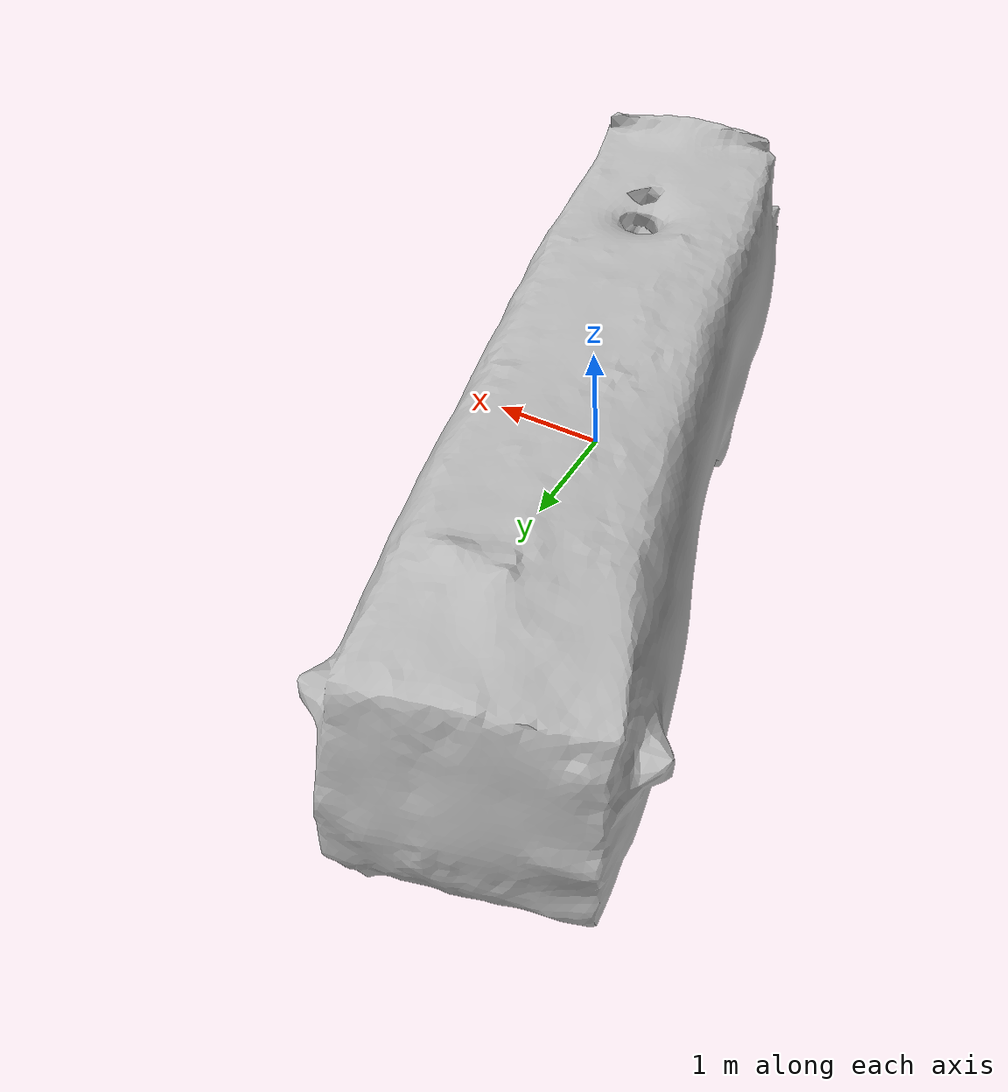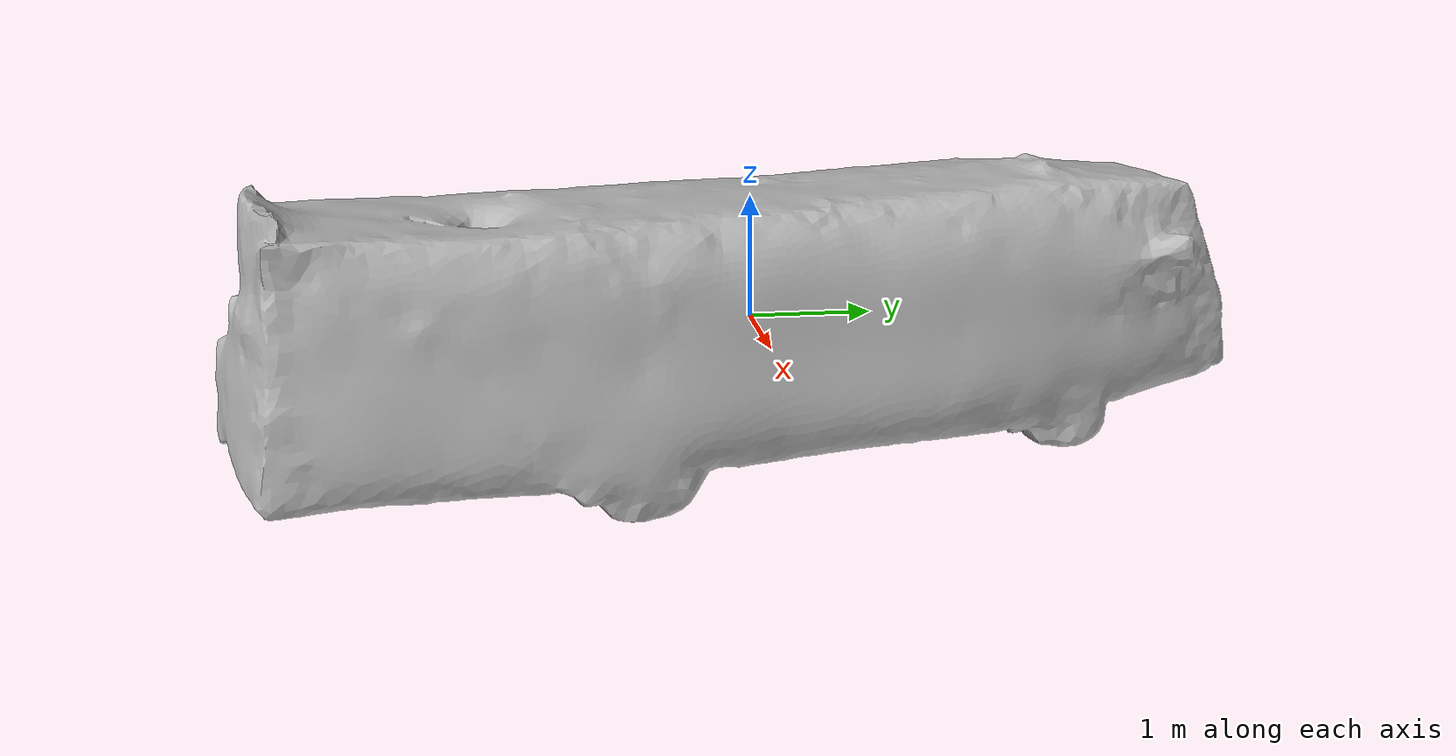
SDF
<?xml version='1.0'?>
<sdf version='1.7'>
  <model name='kare-bus4'>
    <model name='kare-bus-2'>
      <model name='kare-bus'>
        <static>1</static>
        <link name='link'>
          <collision name='collision'>
            <geometry>
              <mesh>
                <scale>8 8 8</scale>
                <uri>/home/amadeus/model_editor_models/kare-bus/meshes/kare-bus.obj</uri>
              </mesh>
            </geometry>
          </collision>
          <visual name='visual'>
            <geometry>
              <mesh>
                <scale>8 8 8</scale>
                <uri>/home/amadeus/model_editor_models/kare-bus/meshes/kare-bus.obj</uri>
              </mesh>
            </geometry>
          </visual>
        </link>
        <pose>-3.3e-05 -0 -5e-06 1.57109 0.060055 1.57564</pose>
      </model>
      <static>0</static>
      <allow_auto_disable>1</allow_auto_disable>
      <pose>4.1e-05 -4.9e-05 -0 0 -0 1.83082</pose>
    </model>
    <static>0</static>
    <allow_auto_disable>1</allow_auto_disable>
  </model>
</sdf>
